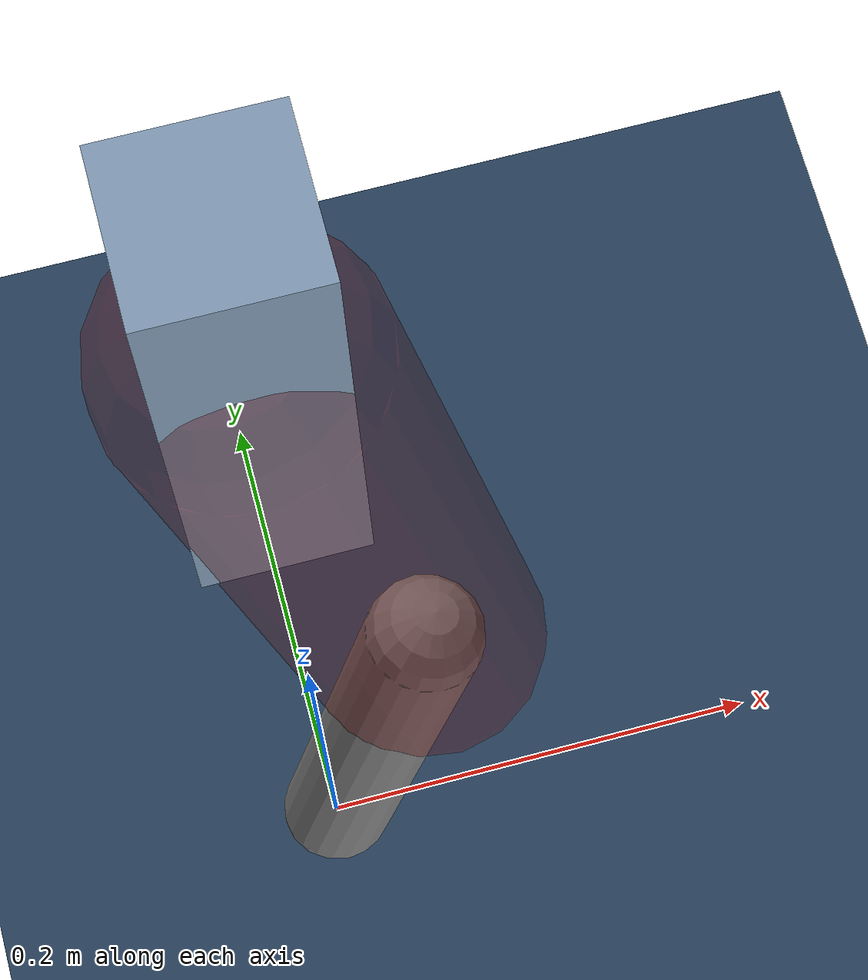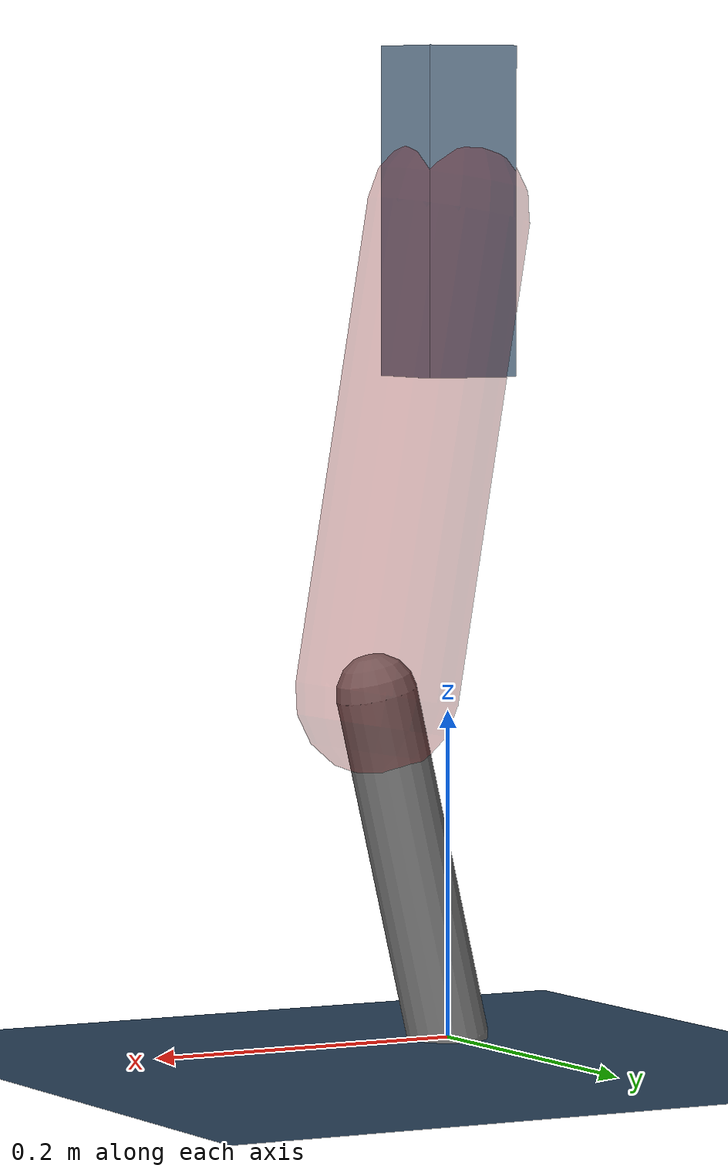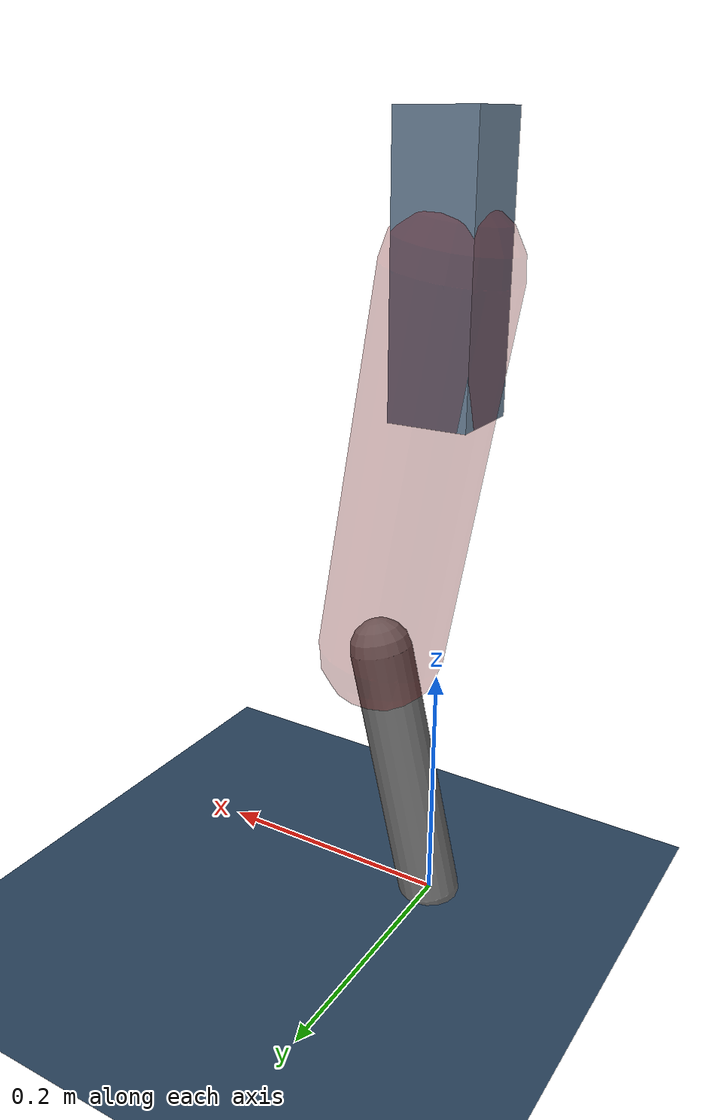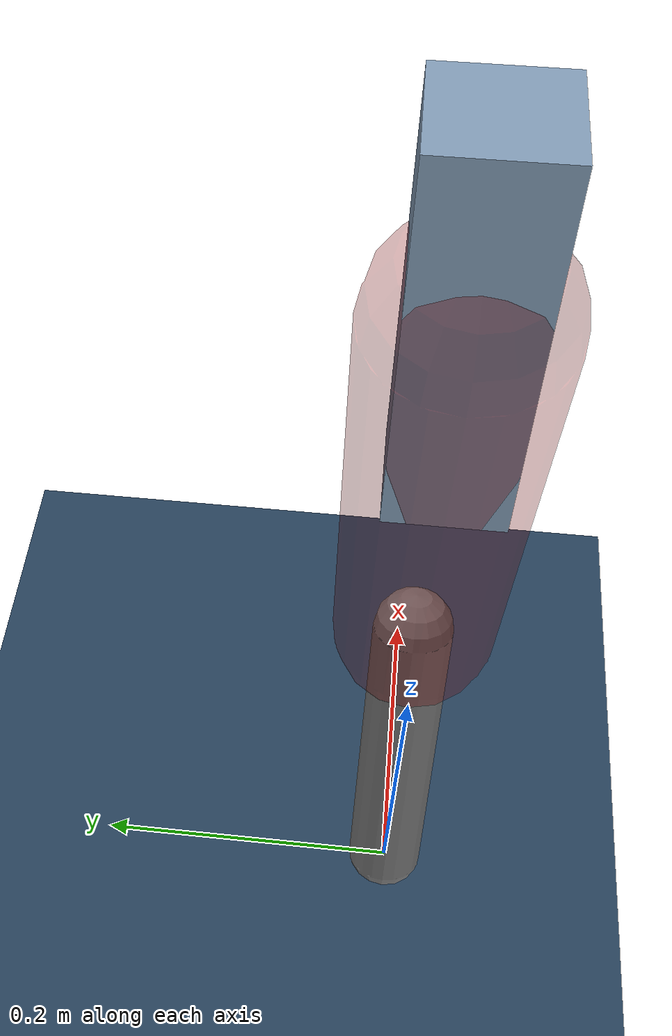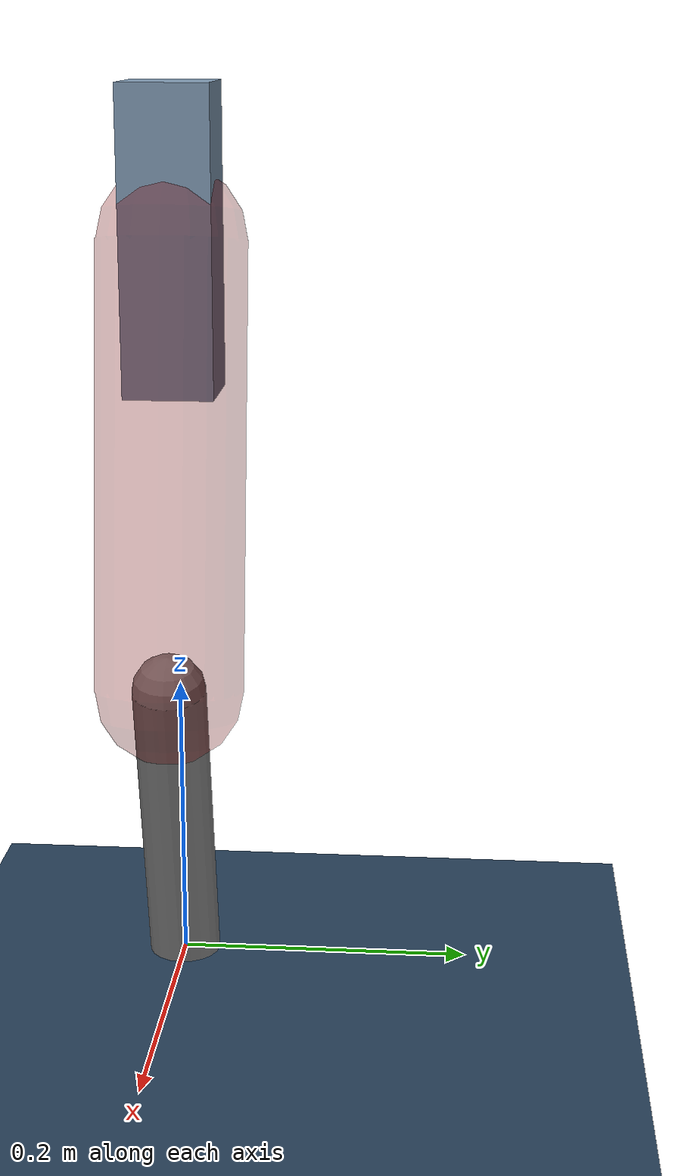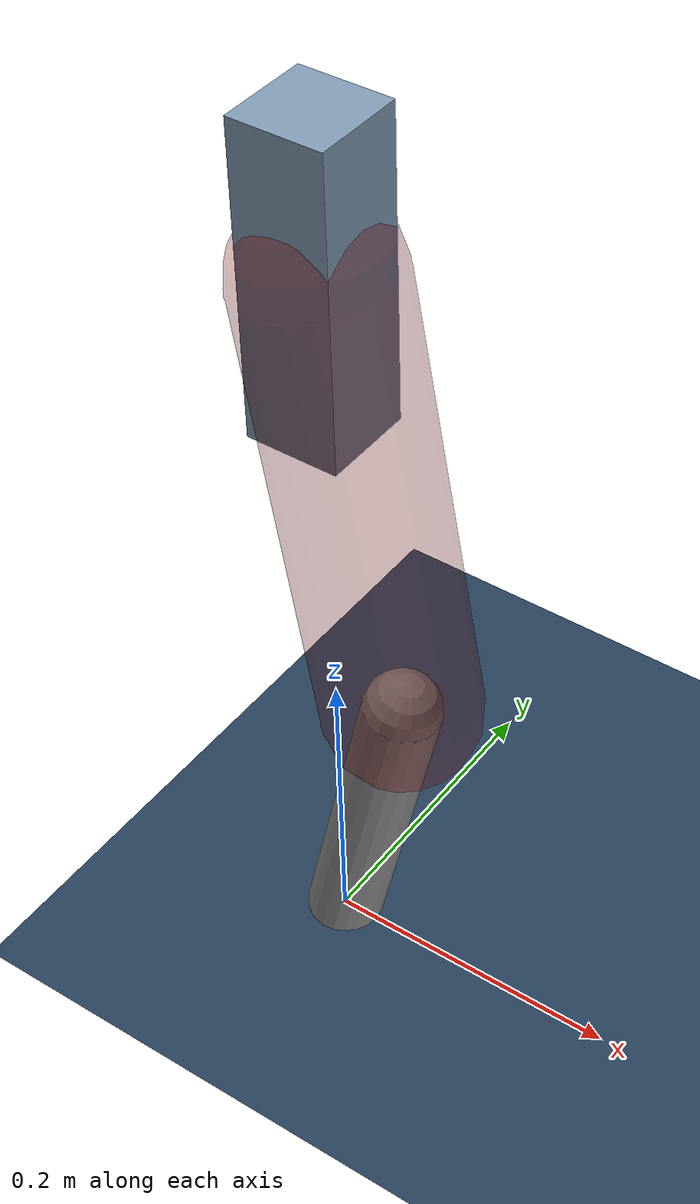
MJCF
<mujoco model="Hopper2D">
	<compiler inertiafromgeom="true" angle="radian" />
	<option timestep="0.001" integrator="implicit" cone="elliptic" solver="Newton" tolerance="1e-10" />

	<default>
		<geom contype="1" conaffinity="1" condim="3" friction="2 0.005 0.0001" solref="0.005 1" />
		<joint limited="true" damping="0.1" />
	</default>

	<asset>
		<texture name="skybox" type="skybox" builtin="gradient" rgb1=".4 .6 .8" rgb2="0 0 0" width="800" height="800" />
		<texture name="grid" type="2d" builtin="checker" rgb1=".1 .2 .3" rgb2=".2 .3 .4" width="300" height="300" mark="edge" markrgb=".2 .3 .4" />
		<material name="ground" texture="grid" texrepeat="1 1" texuniform="true" reflectance="0.1" />
		<material name="leg" rgba="0.5 0.6 0.7 1" />
	</asset>

	<worldbody>

		<geom name="floor" type="plane" size="5 5 0.25" material="ground" />

		<light directional="false" diffuse="0.8 0.8 0.8" specular="0.3 0.3 0.3" pos="0 0 2" dir="0 0 -1" />
		<light mode="targetbodycom" target="base" directional="false" diffuse="0.8 0.8 0.8" specular="0.3 0.3 0.3" pos="0 0 2" dir="0 0 -1" />

		<camera name="fixed" pos="0 -2 1" xyaxes="1 0 0 0 0 1" />
		<camera name="tracking" mode="trackcom" pos="0 -3 1" />

		<body name="root" pos="0 0 0.503861419582397">
			<joint name="slide_x" type="slide" axis="1 0 0" range="-100 100" />
			<joint name="slide_z" type="slide" axis="0 0 1" range="0 10" />

			<body name="base" pos="0 0 0">
				<geom name="torso" type="box" size="0.03 0.03 0.1" mass="3.049" material="leg" />

				<body name="link1" pos="0 0 0" euler="0 1.401613508191272 0">
					<joint type="hinge" axis="0 -1 0" pos="0 0 0" name="hinge1" limited="true" range="-3.14 3.14" stiffness="0" damping="0.1" />
					<geom name="thigh" type="capsule" fromto="0 0 0 0.2959565950878097 0 0" size="0.05" rgba="0.5 0 0 0.3" mass="0.9777871472283052" />

					<body name="link2" pos="0.2959565950878097 0 0" euler="0 0.39991272792776783 0">
						<joint type="hinge" axis="0 -1 0" pos="0 0 0" name="hinge2" limited="true" range="-3.14 3.14" stiffness="0" damping="0.1" />
						<geom name="shank" type="capsule" fromto="0 0 0 0.21790482449458734 0 0" size="0.025" mass="0.41592385959566985" />

					</body>
				</body>
			</body>
		</body>
	</worldbody>

	<actuator>
		<motor name="torque1" joint="hinge1" ctrlrange="-131.0084876152431 131.0084876152431" ctrllimited="true" gear="1" />
		<motor name="torque2" joint="hinge2" ctrlrange="-78.49562908955755 78.49562908955755" ctrllimited="true" gear="1" />
	</actuator>
</mujoco>
